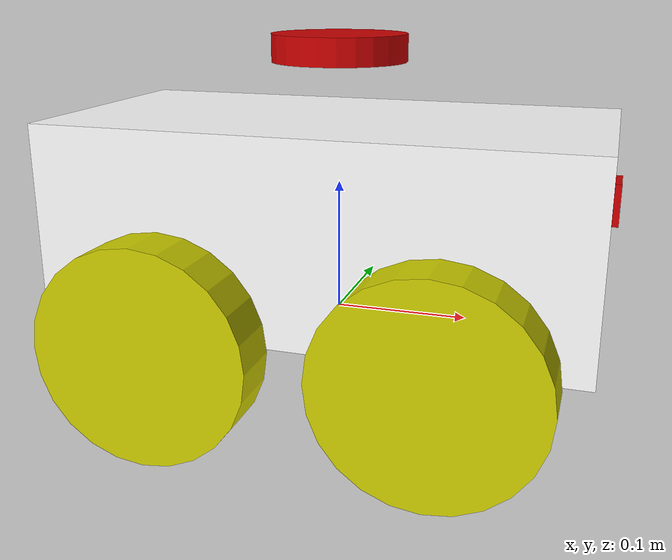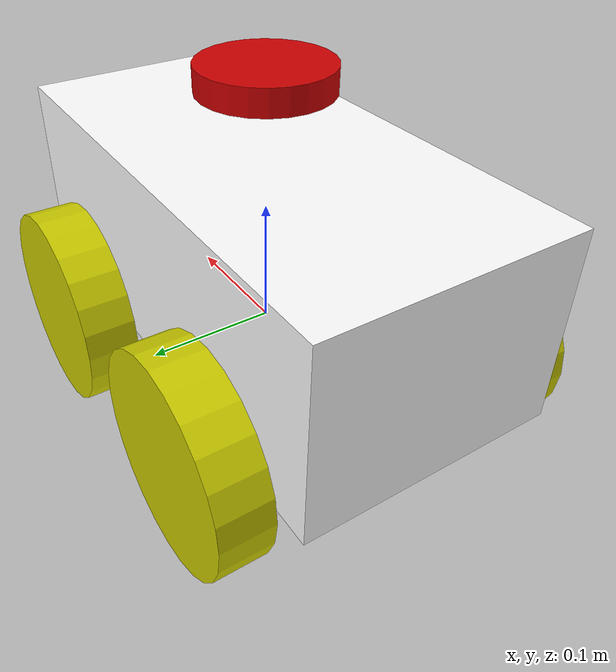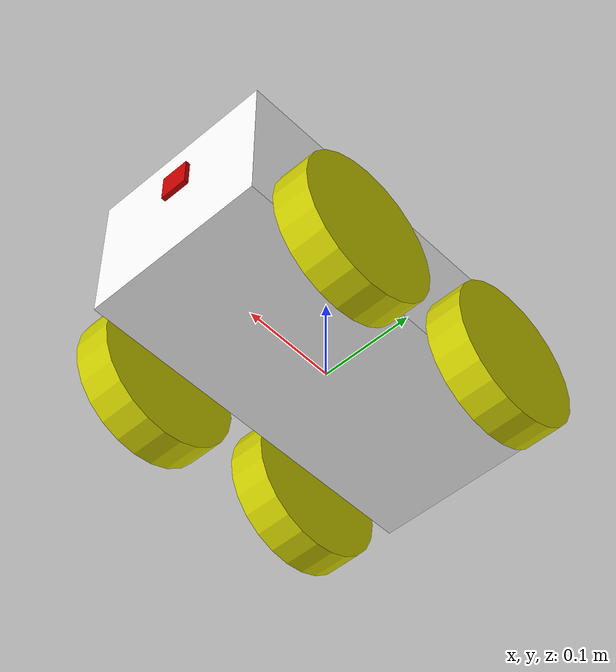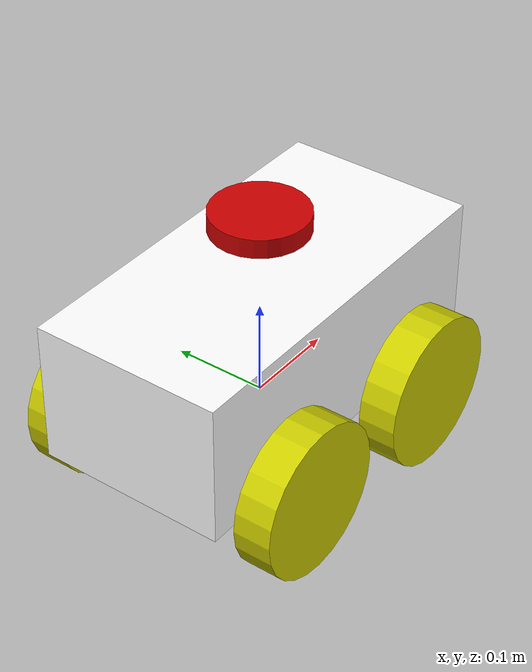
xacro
<?xml version="1.0"?>
<robot xmlns:xacro="http://www.ros.org/wiki/xacro"  name="soonduck">

    <xacro:include filename="inertial_macros.xacro"/>
    <xacro:include filename="colors.xacro" />

    <xacro:include filename="body.xacro" />

    <xacro:include filename="lidar.xacro"/>
    <xacro:include filename="camera.xacro"/>
    <xacro:include filename="gazebo_control.xacro" />

</robot>

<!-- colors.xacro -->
<robot xmlns:xacro="http://www.ros.org/wiki/xacro" name="colors">

    <material name="white">
        <color rgba="1.0 1.0 1.0 1.0"/>
    </material>

    <material name="red">
        <color rgba="0.8 0.0 0.0 1.0"/>
    </material>

    <material name="orange">
        <color rgba="${255/255} ${108/255} ${10/255} 1.0"/>
    </material>

    <material name="yellow">
        <color rgba="0.8 0.8 0.0 1.0"/>
    </material>

    <material name="blue">
        <color rgba="0.0 0.0 0.8 1.0"/>
    </material>

    <material name="green">
        <color rgba="0.0 0.8 0.0 1.0"/>
    </material>

    <material name="grey">
        <color rgba="0.2 0.2 0.2 1.0"/>
    </material>

    <material name="brown">
        <color rgba="${222/255} ${207/255} ${195/255} 1.0"/>
    </material>

    <material name="black">
        <color rgba="0.0 0.0 0.0 1.0"/>
    </material>

</robot>

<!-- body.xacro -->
<robot xmlns:xacro="http://www.ros.org/wiki/xacro" >

    <!-- BASE LINK -->

    <link name="base_link"/>

    <!-- BASE FOOTPRINT LINK -->

    <joint name="base_footprint_joint" type="fixed">
        <parent link="base_footprint"/>
        <child link="base_link"/>
        <origin xyz="0 0 0"/>
    </joint>

    <link name="base_footprint"/>

    <!-- CHASSIS LINK -->

    <joint name="chassis_joint" type="fixed">
        <parent link="base_link"/>
        <child link="chassis"/>
        <origin xyz="0 0 0.075"/>
    </joint>

    <link name="chassis">
        <visual>
            <origin xyz="0 0 0"/>
            <geometry>
                <box size="0.4 0.2 0.15"/>
            </geometry>
            <!-- Color for RVIZ -->
            <material name="white"/>
        </visual>
        <collision>
            <origin xyz="0 0 0"/>
            <geometry>
                <box size="0.4 0.2 0.15"/>
            </geometry>
        </collision>
        <xacro:inertial_box mass="0.5" x="0.4" y="0.2" z="0.15">
            <origin xyz="0 0 0" rpy="0 0 0"/>
        </xacro:inertial_box>
    </link>

    <!-- Color for Gazebo -->
    <gazebo reference="chassis">
        <material>Gazebo/White</material>
    </gazebo>

    <!-- FRONT LEFT WHEEL LINK -->

    <joint name="front_left_wheel_joint" type="continuous">
        <parent link="base_link"/>
        <child link="front_left_wheel"/>
        <origin xyz="0.1 0.125 0" rpy="-${pi/2} 0 0"/>
        <axis xyz="0 0 1"/>
    </joint>

    <link name="front_left_wheel">
        <visual>
            <geometry>
                <cylinder radius="0.08" length="0.04"/>
            </geometry>
            <material name="yellow"/>
        </visual>
        <collision>
            <geometry>
                <sphere radius="0.08"/>
            </geometry>
        </collision>
        <xacro:inertial_cylinder mass="0.1" length="0.04" radius="0.08">
            <origin xyz="0 0 0" rpy="0 0 0"/>
        </xacro:inertial_cylinder>
    </link>

    <gazebo reference="front_left_wheel">
        <material>Gazebo/Wood</material>
    </gazebo>

    <!-- FRONT RIGHT WHEEL LINK -->

    <joint name="front_right_wheel_joint" type="continuous">
        <parent link="base_link"/>
        <child link="front_right_wheel"/>
        <origin xyz="0.1 -0.125 0" rpy="${pi/2} 0 0"/>
        <axis xyz="0 0 -1"/>
    </joint>

    <link name="front_right_wheel">
        <visual>
            <geometry>
                <cylinder radius="0.08" length="0.04"/>
            </geometry>
            <material name="yellow"/>
        </visual>
        <collision>
            <geometry>
                <sphere radius="0.08"/>
            </geometry>
        </collision>
        <xacro:inertial_cylinder mass="0.1" length="0.04" radius="0.08">
            <origin xyz="0 0 0" rpy="0 0 0"/>
        </xacro:inertial_cylinder>
    </link>

    <gazebo reference="front_right_wheel">
        <material>Gazebo/Wood</material>
    </gazebo>

    <!-- BACK LEFT WHEEL LINK -->

    <joint name="back_left_wheel_joint" type="continuous">
        <parent link="base_link"/>
        <child link="back_left_wheel"/>
        <origin xyz="-0.1 0.125 0" rpy="-${pi/2} 0 0"/>
        <axis xyz="0 0 1"/>
    </joint>

    <link name="back_left_wheel">
        <visual>
            <geometry>
                <cylinder radius="0.08" length="0.04"/>
            </geometry>
            <material name="yellow"/>
        </visual>
        <collision>
            <geometry>
                <sphere radius="0.08"/>
            </geometry>
        </collision>
        <xacro:inertial_cylinder mass="0.1" length="0.04" radius="0.08">
            <origin xyz="0 0 0" rpy="0 0 0"/>
        </xacro:inertial_cylinder>
    </link>

    <gazebo reference="back_left_wheel">
        <material>Gazebo/Wood</material>
    </gazebo>

    <!-- BACK RIGHT WHEEL LINK -->

    <joint name="back_right_wheel_joint" type="continuous">
        <parent link="base_link"/>
        <child link="back_right_wheel"/>
        <origin xyz="-0.1 -0.125 0" rpy="${pi/2} 0 0"/>
        <axis xyz="0 0 -1"/>
    </joint>

    <link name="back_right_wheel">
        <visual>
            <geometry>
                <cylinder radius="0.08" length="0.04"/>
            </geometry>
            <material name="yellow"/>
        </visual>
        <collision>
            <geometry>
                <sphere radius="0.08"/>
            </geometry>
        </collision>
        <xacro:inertial_cylinder mass="0.1" length="0.04" radius="0.08">
            <origin xyz="0 0 0" rpy="0 0 0"/>
        </xacro:inertial_cylinder>
    </link>

    <gazebo reference="back_right_wheel">
        <material>Gazebo/Wood</material>
    </gazebo>

</robot>

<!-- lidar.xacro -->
<robot xmlns:xacro="http://www.ros.org/wiki/xacro" >

    <joint name="head_lidar_joint" type="fixed">
        <parent link="base_link"/>
        <child link="head_lidar"/>
        <origin xyz="0 0 0.2" rpy="0 0 0"/>
    </joint>

    <link name="head_lidar">
        <visual>
            <geometry>
                <cylinder radius="0.05" length="0.02"/>
            </geometry>
            <material name="red"/>
        </visual>
        <collision>
            <geometry>
                <cylinder radius="0.05" length="0.02"/>
            </geometry>
        </collision>
        <xacro:inertial_cylinder mass="0.01" length="0.02" radius="0.05">
            <origin xyz="0 0 0" rpy="0 0 0"/>
        </xacro:inertial_cylinder>
    </link>

    <gazebo reference="head_lidar">
        <material>Gazebo/Red</material>

        <sensor name="head_lidar_sensor" type="ray">
            <pose> 0 0 0 0 0 0 </pose>
            <visualize>true</visualize>
            <update_rate>40</update_rate>
            <ray>
                <scan>
                    <horizontal>
                        <samples>720</samples>
                        <resolution>1</resolution>
                        <min_angle>-3.141</min_angle>
                        <max_angle>3.141</max_angle>
                    </horizontal>
                </scan>
                <range>
                    <min>0.1</min>
                    <max>10.0</max>
                </range>
            </ray>
            <noise>
                <type>gaussian</type>
                <mean>0.0</mean>
                <stddev>0.01</stddev>
            </noise>
            <plugin name="laser_controller" filename="libgazebo_ros_laser.so">
                <topicName>lidar/scan</topicName>
                <frameName>head_lidar</frameName>
            </plugin>
        </sensor>
    </gazebo>

</robot>

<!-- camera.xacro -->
<robot xmlns:xacro="http://ros.org/wiki/xacro">
    <link name="front_cam_link">
        <visual>
            <geometry>
                <box size="0.010 0.03 0.03"/>
            </geometry>
            <material name="red"/>
        </visual>
    </link>

    <joint name="front_cam_joint" type="fixed">
        <parent link="base_link"/>
        <child link="front_cam_link"/>
        <origin xyz="0.2 0 0.1" rpy="0 0 0"/>
    </joint>

    <link name="front_cam_link_optical"/>

    <joint name="front_cam_optical_joint" type="fixed">
        <origin xyz="0 0 0" rpy="${-pi/2} 0 ${-pi/2}" />
        <parent link="front_cam_link" />
        <child link="front_cam_link_optical" />
    </joint>

    <gazebo reference="front_cam_link">
        <material>Gazebo/Red</material>
        <sensor name="front_cam" type="camera">
            <pose> 0 0 0 0 0 0 </pose>
            <visualize>true</visualize>
            <update_rate>10</update_rate>
            <camera>
                <horizontal_fov>1.089</horizontal_fov>
                <image>
                    <format>R8G8B8</format>
                    <width>640</width>
                    <height>480</height>
                </image>
                <clip>
                    <near>0.05</near>
                    <far>8.0</far>
                </clip>
            </camera>
            <plugin name="front_cam" filename="libgazebo_ros_camera.so">
                <frame_name>front_cam</frame_name>
                <imageTopicName>front_cam/image_raw</imageTopicName>
                <cameraInfoTopicName>front_cam/camera_info</cameraInfoTopicName>
            </plugin>
        </sensor>
    </gazebo>

</robot>
